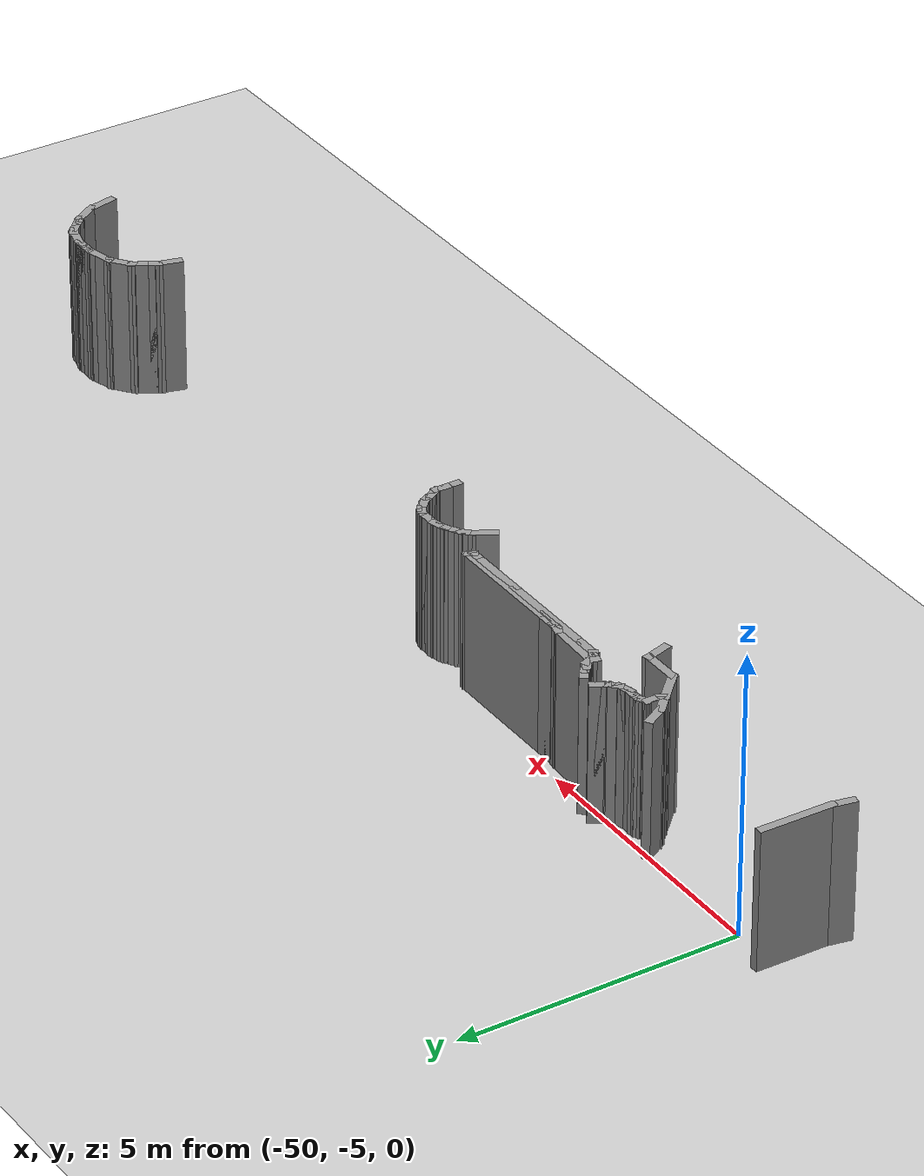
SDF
<sdf version="1.6">
 <world name="default">
  <model name="ground_plane">
   <static>1</static>
   <link name="link">
    <collision name="collision">
     <geometry><plane><normal>0 0 1</normal><size>100 100</size></plane></geometry>
     <surface><friction><ode><mu>100</mu><mu2>50</mu2></ode></friction></surface>
    </collision>
    <visual name="visual">
     <cast_shadows>0</cast_shadows>
     <geometry><plane><normal>0 0 1</normal><size>100 100</size></plane></geometry>
     <material>
      <script><uri>file://media/materials/scripts/gazebo.material</uri><name>Gazebo/Grey</name></script>
     </material>
    </visual>
   </link>
  </model>
  <model name="scene">
   <pose>1.8013 -1.70593 0 0 -0 0</pose>
   <link name="Wall_223">
    <collision name="Wall_223_Collision">
     <geometry><box><size>0.530979 0.15 2.5</size></box></geometry>
     <pose>0 0 1.25 0 -0 0</pose>
    </collision>
    <visual name="Wall_223_Visual">
     <pose>0 0 1.25 0 -0 0</pose>
     <geometry><box><size>0.530979 0.15 2.5</size></box></geometry>
     <material>
      <script><uri>file://media/materials/scripts/gazebo.material</uri><name>Gazebo/Grey</name></script>
      <ambient>1 1 1 1</ambient>
     </material>
    </visual>
    <pose>-47.8017 -4.46052 0 0 -0 1.85773</pose>
   </link>
   <link name="Wall_224">
    <collision name="Wall_224_Collision">
     <geometry><box><size>0.780806 0.15 2.5</size></box></geometry>
     <pose>0 0 1.25 0 -0 0</pose>
    </collision>
    <visual name="Wall_224_Visual">
     <pose>0 0 1.25 0 -0 0</pose>
     <geometry><box><size>0.780806 0.15 2.5</size></box></geometry>
     <material>
      <script><uri>file://media/materials/scripts/gazebo.material</uri><name>Gazebo/Grey</name></script>
      <ambient>1 1 1 1</ambient>
     </material>
    </visual>
    <pose>-48.1787 -4.27782 0 0 -0 3.14159</pose>
   </link>
   <link name="Wall_226">
    <collision name="Wall_226_Collision">
     <geometry><box><size>0.75 0.15 2.5</size></box></geometry>
     <pose>0 0 1.25 0 -0 0</pose>
    </collision>
    <visual name="Wall_226_Visual">
     <pose>0 0 1.25 0 -0 0</pose>
     <geometry><box><size>0.75 0.15 2.5</size></box></geometry>
     <material>
      <script><uri>file://media/materials/scripts/gazebo.material</uri><name>Gazebo/Grey</name></script>
      <ambient>1 1 1 1</ambient>
     </material>
    </visual>
    <pose>-48.7063 -4.06569 0 0 -0 2.35619</pose>
   </link>
   <link name="Wall_227">
    <collision name="Wall_227_Collision">
     <geometry><box><size>0.5 0.15 2.5</size></box></geometry>
     <pose>0 0 1.25 0 -0 0</pose>
    </collision>
    <visual name="Wall_227_Visual">
     <pose>0 0 1.25 0 -0 0</pose>
     <geometry><box><size>0.5 0.15 2.5</size></box></geometry>
     <material>
      <script><uri>file://media/materials/scripts/gazebo.material</uri><name>Gazebo/Grey</name></script>
      <ambient>1 1 1 1</ambient>
     </material>
    </visual>
    <pose>-49.0421 -3.72982 0 0 -0 2.35619</pose>
   </link>
   <link name="Wall_228">
    <collision name="Wall_228_Collision">
     <geometry><box><size>0.5 0.15 2.5</size></box></geometry>
     <pose>0 0 1.25 0 -0 0</pose>
    </collision>
    <visual name="Wall_228_Visual">
     <pose>0 0 1.25 0 -0 0</pose>
     <geometry><box><size>0.5 0.15 2.5</size></box></geometry>
     <material>
      <script><uri>file://media/materials/scripts/gazebo.material</uri><name>Gazebo/Grey</name></script>
      <ambient>1 1 1 1</ambient>
     </material>
    </visual>
    <pose>-49.2534 -3.45452 0 0 -0 2.0944</pose>
   </link>
   <link name="Wall_246">
    <collision name="Wall_246_Collision">
     <geometry><box><size>0.5 0.15 2.5</size></box></geometry>
     <pose>0 0 1.25 0 -0 0</pose>
    </collision>
    <visual name="Wall_246_Visual">
     <pose>0 0 1.25 0 -0 0</pose>
     <geometry><box><size>0.5 0.15 2.5</size></box></geometry>
     <material>
      <script><uri>file://media/materials/scripts/gazebo.material</uri><name>Gazebo/Grey</name></script>
      <ambient>1 1 1 1</ambient>
     </material>
    </visual>
    <pose>-43.4468 -4.09344 0 0 -0 1.0472</pose>
   </link>
   <link name="Wall_247">
    <collision name="Wall_247_Collision">
     <geometry><box><size>0.25 0.15 2.5</size></box></geometry>
     <pose>0 0 1.25 0 -0 0</pose>
    </collision>
    <visual name="Wall_247_Visual">
     <pose>0 0 1.25 0 -0 0</pose>
     <geometry><box><size>0.25 0.15 2.5</size></box></geometry>
     <material>
      <script><uri>file://media/materials/scripts/gazebo.material</uri><name>Gazebo/Grey</name></script>
      <ambient>1 1 1 1</ambient>
     </material>
    </visual>
    <pose>-43.3239 -3.90653 0 0 -0 0.785398</pose>
   </link>
   <link name="Wall_248">
    <collision name="Wall_248_Collision">
     <geometry><box><size>0.25 0.15 2.5</size></box></geometry>
     <pose>0 0 1.25 0 -0 0</pose>
    </collision>
    <visual name="Wall_248_Visual">
     <pose>0 0 1.25 0 -0 0</pose>
     <geometry><box><size>0.25 0.15 2.5</size></box></geometry>
     <material>
      <script><uri>file://media/materials/scripts/gazebo.material</uri><name>Gazebo/Grey</name></script>
      <ambient>1 1 1 1</ambient>
     </material>
    </visual>
    <pose>-43.2532 -3.83582 0 0 -0 0.785398</pose>
   </link>
   <link name="Wall_249">
    <collision name="Wall_249_Collision">
     <geometry><box><size>0.25 0.15 2.5</size></box></geometry>
     <pose>0 0 1.25 0 -0 0</pose>
    </collision>
    <visual name="Wall_249_Visual">
     <pose>0 0 1.25 0 -0 0</pose>
     <geometry><box><size>0.25 0.15 2.5</size></box></geometry>
     <material>
      <script><uri>file://media/materials/scripts/gazebo.material</uri><name>Gazebo/Grey</name></script>
      <ambient>1 1 1 1</ambient>
     </material>
    </visual>
    <pose>-43.1746 -3.77546 0 0 -0 0.523599</pose>
   </link>
   <link name="Wall_250">
    <collision name="Wall_250_Collision">
     <geometry><box><size>0.25 0.15 2.5</size></box></geometry>
     <pose>0 0 1.25 0 -0 0</pose>
    </collision>
    <visual name="Wall_250_Visual">
     <pose>0 0 1.25 0 -0 0</pose>
     <geometry><box><size>0.25 0.15 2.5</size></box></geometry>
     <material>
      <script><uri>file://media/materials/scripts/gazebo.material</uri><name>Gazebo/Grey</name></script>
      <ambient>1 1 1 1</ambient>
     </material>
    </visual>
    <pose>-43.0879 -3.72546 0 0 -0 0.523599</pose>
   </link>
   <link name="Wall_251">
    <collision name="Wall_251_Collision">
     <geometry><box><size>0.25 0.15 2.5</size></box></geometry>
     <pose>0 0 1.25 0 -0 0</pose>
    </collision>
    <visual name="Wall_251_Visual">
     <pose>0 0 1.25 0 -0 0</pose>
     <geometry><box><size>0.25 0.15 2.5</size></box></geometry>
     <material>
      <script><uri>file://media/materials/scripts/gazebo.material</uri><name>Gazebo/Grey</name></script>
      <ambient>1 1 1 1</ambient>
     </material>
    </visual>
    <pose>-43.0013 -3.67546 0 0 -0 0.523599</pose>
   </link>
   <link name="Wall_252">
    <collision name="Wall_252_Collision">
     <geometry><box><size>0.25 0.15 2.5</size></box></geometry>
     <pose>0 0 1.25 0 -0 0</pose>
    </collision>
    <visual name="Wall_252_Visual">
     <pose>0 0 1.25 0 -0 0</pose>
     <geometry><box><size>0.25 0.15 2.5</size></box></geometry>
     <material>
      <script><uri>file://media/materials/scripts/gazebo.material</uri><name>Gazebo/Grey</name></script>
      <ambient>1 1 1 1</ambient>
     </material>
    </visual>
    <pose>-42.9097 -3.63752 0 0 -0 0.261799</pose>
   </link>
   <link name="Wall_253">
    <collision name="Wall_253_Collision">
     <geometry><box><size>0.25 0.15 2.5</size></box></geometry>
     <pose>0 0 1.25 0 -0 0</pose>
    </collision>
    <visual name="Wall_253_Visual">
     <pose>0 0 1.25 0 -0 0</pose>
     <geometry><box><size>0.25 0.15 2.5</size></box></geometry>
     <material>
      <script><uri>file://media/materials/scripts/gazebo.material</uri><name>Gazebo/Grey</name></script>
      <ambient>1 1 1 1</ambient>
     </material>
    </visual>
    <pose>-42.8132 -3.61164 0 0 -0 0.261799</pose>
   </link>
   <link name="Wall_254">
    <collision name="Wall_254_Collision">
     <geometry><box><size>0.25 0.15 2.5</size></box></geometry>
     <pose>0 0 1.25 0 -0 0</pose>
    </collision>
    <visual name="Wall_254_Visual">
     <pose>0 0 1.25 0 -0 0</pose>
     <geometry><box><size>0.25 0.15 2.5</size></box></geometry>
     <material>
      <script><uri>file://media/materials/scripts/gazebo.material</uri><name>Gazebo/Grey</name></script>
      <ambient>1 1 1 1</ambient>
     </material>
    </visual>
    <pose>-42.7149 -3.5987 0 0 -0 0</pose>
   </link>
   <link name="Wall_255">
    <collision name="Wall_255_Collision">
     <geometry><box><size>0.25 0.15 2.5</size></box></geometry>
     <pose>0 0 1.25 0 -0 0</pose>
    </collision>
    <visual name="Wall_255_Visual">
     <pose>0 0 1.25 0 -0 0</pose>
     <geometry><box><size>0.25 0.15 2.5</size></box></geometry>
     <material>
      <script><uri>file://media/materials/scripts/gazebo.material</uri><name>Gazebo/Grey</name></script>
      <ambient>1 1 1 1</ambient>
     </material>
    </visual>
    <pose>-42.6149 -3.5987 0 0 -0 0</pose>
   </link>
   <link name="Wall_256">
    <collision name="Wall_256_Collision">
     <geometry><box><size>0.25 0.15 2.5</size></box></geometry>
     <pose>0 0 1.25 0 -0 0</pose>
    </collision>
    <visual name="Wall_256_Visual">
     <pose>0 0 1.25 0 -0 0</pose>
     <geometry><box><size>0.25 0.15 2.5</size></box></geometry>
     <material>
      <script><uri>file://media/materials/scripts/gazebo.material</uri><name>Gazebo/Grey</name></script>
      <ambient>1 1 1 1</ambient>
     </material>
    </visual>
    <pose>-42.5149 -3.5987 0 0 -0 0</pose>
   </link>
   <link name="Wall_257">
    <collision name="Wall_257_Collision">
     <geometry><box><size>0.25 0.15 2.5</size></box></geometry>
     <pose>0 0 1.25 0 -0 0</pose>
    </collision>
    <visual name="Wall_257_Visual">
     <pose>0 0 1.25 0 -0 0</pose>
     <geometry><box><size>0.25 0.15 2.5</size></box></geometry>
     <material>
      <script><uri>file://media/materials/scripts/gazebo.material</uri><name>Gazebo/Grey</name></script>
      <ambient>1 1 1 1</ambient>
     </material>
    </visual>
    <pose>-42.4166 -3.61164 0 0 0 -0.261799</pose>
   </link>
   <link name="Wall_258">
    <collision name="Wall_258_Collision">
     <geometry><box><size>0.25 0.15 2.5</size></box></geometry>
     <pose>0 0 1.25 0 -0 0</pose>
    </collision>
    <visual name="Wall_258_Visual">
     <pose>0 0 1.25 0 -0 0</pose>
     <geometry><box><size>0.25 0.15 2.5</size></box></geometry>
     <material>
      <script><uri>file://media/materials/scripts/gazebo.material</uri><name>Gazebo/Grey</name></script>
      <ambient>1 1 1 1</ambient>
     </material>
    </visual>
    <pose>-42.325 -3.64958 0 0 0 -0.523599</pose>
   </link>
   <link name="Wall_259">
    <collision name="Wall_259_Collision">
     <geometry><box><size>0.25 0.15 2.5</size></box></geometry>
     <pose>0 0 1.25 0 -0 0</pose>
    </collision>
    <visual name="Wall_259_Visual">
     <pose>0 0 1.25 0 -0 0</pose>
     <geometry><box><size>0.25 0.15 2.5</size></box></geometry>
     <material>
      <script><uri>file://media/materials/scripts/gazebo.material</uri><name>Gazebo/Grey</name></script>
      <ambient>1 1 1 1</ambient>
     </material>
    </visual>
    <pose>-42.2463 -3.70994 0 0 0 -0.785398</pose>
   </link>
   <link name="Wall_260">
    <collision name="Wall_260_Collision">
     <geometry><box><size>0.25 0.15 2.5</size></box></geometry>
     <pose>0 0 1.25 0 -0 0</pose>
    </collision>
    <visual name="Wall_260_Visual">
     <pose>0 0 1.25 0 -0 0</pose>
     <geometry><box><size>0.25 0.15 2.5</size></box></geometry>
     <material>
      <script><uri>file://media/materials/scripts/gazebo.material</uri><name>Gazebo/Grey</name></script>
      <ambient>1 1 1 1</ambient>
     </material>
    </visual>
    <pose>-42.1756 -3.78065 0 0 0 -0.785398</pose>
   </link>
   <link name="Wall_261">
    <collision name="Wall_261_Collision">
     <geometry><box><size>0.25 0.15 2.5</size></box></geometry>
     <pose>0 0 1.25 0 -0 0</pose>
    </collision>
    <visual name="Wall_261_Visual">
     <pose>0 0 1.25 0 -0 0</pose>
     <geometry><box><size>0.25 0.15 2.5</size></box></geometry>
     <material>
      <script><uri>file://media/materials/scripts/gazebo.material</uri><name>Gazebo/Grey</name></script>
      <ambient>1 1 1 1</ambient>
     </material>
    </visual>
    <pose>-42.1152 -3.8593 0 0 0 -1.0472</pose>
   </link>
   <link name="Wall_262">
    <collision name="Wall_262_Collision">
     <geometry><box><size>0.25 0.15 2.5</size></box></geometry>
     <pose>0 0 1.25 0 -0 0</pose>
    </collision>
    <visual name="Wall_262_Visual">
     <pose>0 0 1.25 0 -0 0</pose>
     <geometry><box><size>0.25 0.15 2.5</size></box></geometry>
     <material>
      <script><uri>file://media/materials/scripts/gazebo.material</uri><name>Gazebo/Grey</name></script>
      <ambient>1 1 1 1</ambient>
     </material>
    </visual>
    <pose>-42.0652 -3.94591 0 0 0 -1.0472</pose>
   </link>
   <link name="Wall_263">
    <collision name="Wall_263_Collision">
     <geometry><box><size>0.25 0.15 2.5</size></box></geometry>
     <pose>0 0 1.25 0 -0 0</pose>
    </collision>
    <visual name="Wall_263_Visual">
     <pose>0 0 1.25 0 -0 0</pose>
     <geometry><box><size>0.25 0.15 2.5</size></box></geometry>
     <material>
      <script><uri>file://media/materials/scripts/gazebo.material</uri><name>Gazebo/Grey</name></script>
      <ambient>1 1 1 1</ambient>
     </material>
    </visual>
    <pose>-42.0152 -4.03251 0 0 0 -1.0472</pose>
   </link>
   <link name="Wall_264">
    <collision name="Wall_264_Collision">
     <geometry><box><size>0.25 0.15 2.5</size></box></geometry>
     <pose>0 0 1.25 0 -0 0</pose>
    </collision>
    <visual name="Wall_264_Visual">
     <pose>0 0 1.25 0 -0 0</pose>
     <geometry><box><size>0.25 0.15 2.5</size></box></geometry>
     <material>
      <script><uri>file://media/materials/scripts/gazebo.material</uri><name>Gazebo/Grey</name></script>
      <ambient>1 1 1 1</ambient>
     </material>
    </visual>
    <pose>-41.9652 -4.11911 0 0 0 -1.0472</pose>
   </link>
   <link name="Wall_265">
    <collision name="Wall_265_Collision">
     <geometry><box><size>0.25 0.15 2.5</size></box></geometry>
     <pose>0 0 1.25 0 -0 0</pose>
    </collision>
    <visual name="Wall_265_Visual">
     <pose>0 0 1.25 0 -0 0</pose>
     <geometry><box><size>0.25 0.15 2.5</size></box></geometry>
     <material>
      <script><uri>file://media/materials/scripts/gazebo.material</uri><name>Gazebo/Grey</name></script>
      <ambient>1 1 1 1</ambient>
     </material>
    </visual>
    <pose>-41.9402 -4.21241 0 0 0 -1.5708</pose>
   </link>
   <link name="Wall_266">
    <collision name="Wall_266_Collision">
     <geometry><box><size>0.25 0.15 2.5</size></box></geometry>
     <pose>0 0 1.25 0 -0 0</pose>
    </collision>
    <visual name="Wall_266_Visual">
     <pose>0 0 1.25 0 -0 0</pose>
     <geometry><box><size>0.25 0.15 2.5</size></box></geometry>
     <material>
      <script><uri>file://media/materials/scripts/gazebo.material</uri><name>Gazebo/Grey</name></script>
      <ambient>1 1 1 1</ambient>
     </material>
    </visual>
    <pose>-41.9402 -4.31241 0 0 0 -1.5708</pose>
   </link>
   <link name="Wall_267">
    <collision name="Wall_267_Collision">
     <geometry><box><size>0.25 0.15 2.5</size></box></geometry>
     <pose>0 0 1.25 0 -0 0</pose>
    </collision>
    <visual name="Wall_267_Visual">
     <pose>0 0 1.25 0 -0 0</pose>
     <geometry><box><size>0.25 0.15 2.5</size></box></geometry>
     <material>
      <script><uri>file://media/materials/scripts/gazebo.material</uri><name>Gazebo/Grey</name></script>
      <ambient>1 1 1 1</ambient>
     </material>
    </visual>
    <pose>-41.9402 -4.41241 0 0 0 -1.5708</pose>
   </link>
   <link name="Wall_268">
    <collision name="Wall_268_Collision">
     <geometry><box><size>0.25 0.15 2.5</size></box></geometry>
     <pose>0 0 1.25 0 -0 0</pose>
    </collision>
    <visual name="Wall_268_Visual">
     <pose>0 0 1.25 0 -0 0</pose>
     <geometry><box><size>0.25 0.15 2.5</size></box></geometry>
     <material>
      <script><uri>file://media/materials/scripts/gazebo.material</uri><name>Gazebo/Grey</name></script>
      <ambient>1 1 1 1</ambient>
     </material>
    </visual>
    <pose>-41.9402 -4.51241 0 0 0 -1.5708</pose>
   </link>
   <link name="Wall_327">
    <collision name="Wall_327_Collision">
     <geometry><box><size>0.25 0.15 2.5</size></box></geometry>
     <pose>0 0 1.25 0 -0 0</pose>
    </collision>
    <visual name="Wall_327_Visual">
     <pose>0 0 1.25 0 -0 0</pose>
     <geometry><box><size>0.25 0.15 2.5</size></box></geometry>
     <material>
      <script><uri>file://media/materials/scripts/gazebo.material</uri><name>Gazebo/Grey</name></script>
      <ambient>1 1 1 1</ambient>
     </material>
    </visual>
    <pose>-48.8934 -3.81026 0 0 -0 1.0472</pose>
   </link>
   <link name="Wall_328">
    <collision name="Wall_328_Collision">
     <geometry><box><size>0.25 0.15 2.5</size></box></geometry>
     <pose>0 0 1.25 0 -0 0</pose>
    </collision>
    <visual name="Wall_328_Visual">
     <pose>0 0 1.25 0 -0 0</pose>
     <geometry><box><size>0.25 0.15 2.5</size></box></geometry>
     <material>
      <script><uri>file://media/materials/scripts/gazebo.material</uri><name>Gazebo/Grey</name></script>
      <ambient>1 1 1 1</ambient>
     </material>
    </visual>
    <pose>-48.8684 -3.71696 0 0 -0 1.5708</pose>
   </link>
   <link name="Wall_329">
    <collision name="Wall_329_Collision">
     <geometry><box><size>0.25 0.15 2.5</size></box></geometry>
     <pose>0 0 1.25 0 -0 0</pose>
    </collision>
    <visual name="Wall_329_Visual">
     <pose>0 0 1.25 0 -0 0</pose>
     <geometry><box><size>0.25 0.15 2.5</size></box></geometry>
     <material>
      <script><uri>file://media/materials/scripts/gazebo.material</uri><name>Gazebo/Grey</name></script>
      <ambient>1 1 1 1</ambient>
     </material>
    </visual>
    <pose>-48.8684 -3.61696 0 0 -0 1.5708</pose>
   </link>
   <link name="Wall_330">
    <collision name="Wall_330_Collision">
     <geometry><box><size>0.25 0.15 2.5</size></box></geometry>
     <pose>0 0 1.25 0 -0 0</pose>
    </collision>
    <visual name="Wall_330_Visual">
     <pose>0 0 1.25 0 -0 0</pose>
     <geometry><box><size>0.25 0.15 2.5</size></box></geometry>
     <material>
      <script><uri>file://media/materials/scripts/gazebo.material</uri><name>Gazebo/Grey</name></script>
      <ambient>1 1 1 1</ambient>
     </material>
    </visual>
    <pose>-48.8251 -3.54196 0 0 -0 0.523599</pose>
   </link>
   <link name="Wall_331">
    <collision name="Wall_331_Collision">
     <geometry><box><size>0.25 0.15 2.5</size></box></geometry>
     <pose>0 0 1.25 0 -0 0</pose>
    </collision>
    <visual name="Wall_331_Visual">
     <pose>0 0 1.25 0 -0 0</pose>
     <geometry><box><size>0.25 0.15 2.5</size></box></geometry>
     <material>
      <script><uri>file://media/materials/scripts/gazebo.material</uri><name>Gazebo/Grey</name></script>
      <ambient>1 1 1 1</ambient>
     </material>
    </visual>
    <pose>-48.7335 -3.50402 0 0 -0 0.261799</pose>
   </link>
   <link name="Wall_332">
    <collision name="Wall_332_Collision">
     <geometry><box><size>0.25 0.15 2.5</size></box></geometry>
     <pose>0 0 1.25 0 -0 0</pose>
    </collision>
    <visual name="Wall_332_Visual">
     <pose>0 0 1.25 0 -0 0</pose>
     <geometry><box><size>0.25 0.15 2.5</size></box></geometry>
     <material>
      <script><uri>file://media/materials/scripts/gazebo.material</uri><name>Gazebo/Grey</name></script>
      <ambient>1 1 1 1</ambient>
     </material>
    </visual>
    <pose>-48.6352 -3.49107 0 0 -0 0</pose>
   </link>
   <link name="Wall_333">
    <collision name="Wall_333_Collision">
     <geometry><box><size>0.25 0.15 2.5</size></box></geometry>
     <pose>0 0 1.25 0 -0 0</pose>
    </collision>
    <visual name="Wall_333_Visual">
     <pose>0 0 1.25 0 -0 0</pose>
     <geometry><box><size>0.25 0.15 2.5</size></box></geometry>
     <material>
      <script><uri>file://media/materials/scripts/gazebo.material</uri><name>Gazebo/Grey</name></script>
      <ambient>1 1 1 1</ambient>
     </material>
    </visual>
    <pose>-48.5352 -3.49107 0 0 -0 0</pose>
   </link>
   <link name="Wall_334">
    <collision name="Wall_334_Collision">
     <geometry><box><size>0.25 0.15 2.5</size></box></geometry>
     <pose>0 0 1.25 0 -0 0</pose>
    </collision>
    <visual name="Wall_334_Visual">
     <pose>0 0 1.25 0 -0 0</pose>
     <geometry><box><size>0.25 0.15 2.5</size></box></geometry>
     <material>
      <script><uri>file://media/materials/scripts/gazebo.material</uri><name>Gazebo/Grey</name></script>
      <ambient>1 1 1 1</ambient>
     </material>
    </visual>
    <pose>-48.4369 -3.47813 0 0 -0 0.261799</pose>
   </link>
   <link name="Wall_335">
    <collision name="Wall_335_Collision">
     <geometry><box><size>0.25 0.15 2.5</size></box></geometry>
     <pose>0 0 1.25 0 -0 0</pose>
    </collision>
    <visual name="Wall_335_Visual">
     <pose>0 0 1.25 0 -0 0</pose>
     <geometry><box><size>0.25 0.15 2.5</size></box></geometry>
     <material>
      <script><uri>file://media/materials/scripts/gazebo.material</uri><name>Gazebo/Grey</name></script>
      <ambient>1 1 1 1</ambient>
     </material>
    </visual>
    <pose>-48.3403 -3.45225 0 0 -0 0.261799</pose>
   </link>
   <link name="Wall_337">
    <collision name="Wall_337_Collision">
     <geometry><box><size>0.25 0.15 2.5</size></box></geometry>
     <pose>0 0 1.25 0 -0 0</pose>
    </collision>
    <visual name="Wall_337_Visual">
     <pose>0 0 1.25 0 -0 0</pose>
     <geometry><box><size>0.25 0.15 2.5</size></box></geometry>
     <material>
      <script><uri>file://media/materials/scripts/gazebo.material</uri><name>Gazebo/Grey</name></script>
      <ambient>1 1 1 1</ambient>
     </material>
    </visual>
    <pose>-48.3403 -3.45225 0 0 -0 0.261799</pose>
   </link>
   <link name="Wall_338">
    <collision name="Wall_338_Collision">
     <geometry><box><size>0.25 0.15 2.5</size></box></geometry>
     <pose>0 0 1.25 0 -0 0</pose>
    </collision>
    <visual name="Wall_338_Visual">
     <pose>0 0 1.25 0 -0 0</pose>
     <geometry><box><size>0.25 0.15 2.5</size></box></geometry>
     <material>
      <script><uri>file://media/materials/scripts/gazebo.material</uri><name>Gazebo/Grey</name></script>
      <ambient>1 1 1 1</ambient>
     </material>
    </visual>
    <pose>-48.2567 -3.40396 0 0 -0 0.785398</pose>
   </link>
   <link name="Wall_339">
    <collision name="Wall_339_Collision">
     <geometry><box><size>0.25 0.15 2.5</size></box></geometry>
     <pose>0 0 1.25 0 -0 0</pose>
    </collision>
    <visual name="Wall_339_Visual">
     <pose>0 0 1.25 0 -0 0</pose>
     <geometry><box><size>0.25 0.15 2.5</size></box></geometry>
     <material>
      <script><uri>file://media/materials/scripts/gazebo.material</uri><name>Gazebo/Grey</name></script>
      <ambient>1 1 1 1</ambient>
     </material>
    </visual>
    <pose>-48.1859 -3.33324 0 0 -0 0.785398</pose>
   </link>
   <link name="Wall_340">
    <collision name="Wall_340_Collision">
     <geometry><box><size>0.25 0.15 2.5</size></box></geometry>
     <pose>0 0 1.25 0 -0 0</pose>
    </collision>
    <visual name="Wall_340_Visual">
     <pose>0 0 1.25 0 -0 0</pose>
     <geometry><box><size>0.25 0.15 2.5</size></box></geometry>
     <material>
      <script><uri>file://media/materials/scripts/gazebo.material</uri><name>Gazebo/Grey</name></script>
      <ambient>1 1 1 1</ambient>
     </material>
    </visual>
    <pose>-48.1256 -3.25459 0 0 -0 1.0472</pose>
   </link>
   <link name="Wall_341">
    <collision name="Wall_341_Collision">
     <geometry><box><size>0.25 0.15 2.5</size></box></geometry>
     <pose>0 0 1.25 0 -0 0</pose>
    </collision>
    <visual name="Wall_341_Visual">
     <pose>0 0 1.25 0 -0 0</pose>
     <geometry><box><size>0.25 0.15 2.5</size></box></geometry>
     <material>
      <script><uri>file://media/materials/scripts/gazebo.material</uri><name>Gazebo/Grey</name></script>
      <ambient>1 1 1 1</ambient>
     </material>
    </visual>
    <pose>-48.0756 -3.16799 0 0 -0 1.0472</pose>
   </link>
   <link name="Wall_345">
    <collision name="Wall_345_Collision">
     <geometry><box><size>0.291187 0.15 2.5</size></box></geometry>
     <pose>0 0 1.25 0 -0 0</pose>
    </collision>
    <visual name="Wall_345_Visual">
     <pose>0 0 1.25 0 -0 0</pose>
     <geometry><box><size>0.291187 0.15 2.5</size></box></geometry>
     <material>
      <script><uri>file://media/materials/scripts/gazebo.material</uri><name>Gazebo/Grey</name></script>
      <ambient>1 1 1 1</ambient>
     </material>
    </visual>
    <pose>-47.712 -3.18531 0 0 0 -0.634634</pose>
   </link>
   <link name="Wall_346">
    <collision name="Wall_346_Collision">
     <geometry><box><size>0.25479 0.15 2.5</size></box></geometry>
     <pose>0 0 1.25 0 -0 0</pose>
    </collision>
    <visual name="Wall_346_Visual">
     <pose>0 0 1.25 0 -0 0</pose>
     <geometry><box><size>0.25479 0.15 2.5</size></box></geometry>
     <material>
      <script><uri>file://media/materials/scripts/gazebo.material</uri><name>Gazebo/Grey</name></script>
      <ambient>1 1 1 1</ambient>
     </material>
    </visual>
    <pose>-47.6185 -3.26757 0 0 0 -0.797944</pose>
   </link>
   <link name="Wall_347">
    <collision name="Wall_347_Collision">
     <geometry><box><size>0.272093 0.15 2.5</size></box></geometry>
     <pose>0 0 1.25 0 -0 0</pose>
    </collision>
    <visual name="Wall_347_Visual">
     <pose>0 0 1.25 0 -0 0</pose>
     <geometry><box><size>0.272093 0.15 2.5</size></box></geometry>
     <material>
      <script><uri>file://media/materials/scripts/gazebo.material</uri><name>Gazebo/Grey</name></script>
      <ambient>1 1 1 1</ambient>
     </material>
    </visual>
    <pose>-47.5338 -3.34549 0 0 0 -0.661705</pose>
   </link>
   <link name="Wall_348">
    <collision name="Wall_348_Collision">
     <geometry><box><size>0.247829 0.15 2.5</size></box></geometry>
     <pose>0 0 1.25 0 -0 0</pose>
    </collision>
    <visual name="Wall_348_Visual">
     <pose>0 0 1.25 0 -0 0</pose>
     <geometry><box><size>0.247829 0.15 2.5</size></box></geometry>
     <material>
      <script><uri>file://media/materials/scripts/gazebo.material</uri><name>Gazebo/Grey</name></script>
      <ambient>1 1 1 1</ambient>
     </material>
    </visual>
    <pose>-47.4676 -3.42559 0 0 0 -1.19431</pose>
   </link>
   <link name="Wall_349">
    <collision name="Wall_349_Collision">
     <geometry><box><size>0.232353 0.15 2.5</size></box></geometry>
     <pose>0 0 1.25 0 -0 0</pose>
    </collision>
    <visual name="Wall_349_Visual">
     <pose>0 0 1.25 0 -0 0</pose>
     <geometry><box><size>0.232353 0.15 2.5</size></box></geometry>
     <material>
      <script><uri>file://media/materials/scripts/gazebo.material</uri><name>Gazebo/Grey</name></script>
      <ambient>1 1 1 1</ambient>
     </material>
    </visual>
    <pose>-47.4643 -3.51056 0 0 0 -1.85914</pose>
   </link>
   <link name="Wall_350">
    <collision name="Wall_350_Collision">
     <geometry><box><size>0.25 0.15 2.5</size></box></geometry>
     <pose>0 0 1.25 0 -0 0</pose>
    </collision>
    <visual name="Wall_350_Visual">
     <pose>0 0 1.25 0 -0 0</pose>
     <geometry><box><size>0.25 0.15 2.5</size></box></geometry>
     <material>
      <script><uri>file://media/materials/scripts/gazebo.material</uri><name>Gazebo/Grey</name></script>
      <ambient>1 1 1 1</ambient>
     </material>
    </visual>
    <pose>-47.4277 -3.56297 0 0 0 -0.261799</pose>
   </link>
   <link name="Wall_351">
    <collision name="Wall_351_Collision">
     <geometry><box><size>0.25 0.15 2.5</size></box></geometry>
     <pose>0 0 1.25 0 -0 0</pose>
    </collision>
    <visual name="Wall_351_Visual">
     <pose>0 0 1.25 0 -0 0</pose>
     <geometry><box><size>0.25 0.15 2.5</size></box></geometry>
     <material>
      <script><uri>file://media/materials/scripts/gazebo.material</uri><name>Gazebo/Grey</name></script>
      <ambient>1 1 1 1</ambient>
     </material>
    </visual>
    <pose>-47.3361 -3.60091 0 0 0 -0.523599</pose>
   </link>
   <link name="Wall_352">
    <collision name="Wall_352_Collision">
     <geometry><box><size>0.5 0.15 2.5</size></box></geometry>
     <pose>0 0 1.25 0 -0 0</pose>
    </collision>
    <visual name="Wall_352_Visual">
     <pose>0 0 1.25 0 -0 0</pose>
     <geometry><box><size>0.5 0.15 2.5</size></box></geometry>
     <material>
      <script><uri>file://media/materials/scripts/gazebo.material</uri><name>Gazebo/Grey</name></script>
      <ambient>1 1 1 1</ambient>
     </material>
    </visual>
    <pose>-47.1178 -3.62591 0 0 -0 0</pose>
   </link>
   <link name="Wall_353">
    <collision name="Wall_353_Collision">
     <geometry><box><size>2 0.15 2.5</size></box></geometry>
     <pose>0 0 1.25 0 -0 0</pose>
    </collision>
    <visual name="Wall_353_Visual">
     <pose>0 0 1.25 0 -0 0</pose>
     <geometry><box><size>2 0.15 2.5</size></box></geometry>
     <material>
      <script><uri>file://media/materials/scripts/gazebo.material</uri><name>Gazebo/Grey</name></script>
      <ambient>1 1 1 1</ambient>
     </material>
    </visual>
    <pose>-46.0178 -3.62591 0 0 -0 0</pose>
   </link>
   <link name="Wall_355">
    <collision name="Wall_355_Collision">
     <geometry><box><size>1.25 0.15 2.5</size></box></geometry>
     <pose>0 0 1.25 0 -0 0</pose>
    </collision>
    <visual name="Wall_355_Visual">
     <pose>0 0 1.25 0 -0 0</pose>
     <geometry><box><size>1.25 0.15 2.5</size></box></geometry>
     <material>
      <script><uri>file://media/materials/scripts/gazebo.material</uri><name>Gazebo/Grey</name></script>
      <ambient>1 1 1 1</ambient>
     </material>
    </visual>
    <pose>-44.5428 -3.62591 0 0 -0 0</pose>
   </link>
   <link name="Wall_356">
    <collision name="Wall_356_Collision">
     <geometry><box><size>0.25 0.15 2.5</size></box></geometry>
     <pose>0 0 1.25 0 -0 0</pose>
    </collision>
    <visual name="Wall_356_Visual">
     <pose>0 0 1.25 0 -0 0</pose>
     <geometry><box><size>0.25 0.15 2.5</size></box></geometry>
     <material>
      <script><uri>file://media/materials/scripts/gazebo.material</uri><name>Gazebo/Grey</name></script>
      <ambient>1 1 1 1</ambient>
     </material>
    </visual>
    <pose>-43.9428 -3.62591 0 0 -0 0</pose>
   </link>
   <link name="Wall_357">
    <collision name="Wall_357_Collision">
     <geometry><box><size>0.25 0.15 2.5</size></box></geometry>
     <pose>0 0 1.25 0 -0 0</pose>
    </collision>
    <visual name="Wall_357_Visual">
     <pose>0 0 1.25 0 -0 0</pose>
     <geometry><box><size>0.25 0.15 2.5</size></box></geometry>
     <material>
      <script><uri>file://media/materials/scripts/gazebo.material</uri><name>Gazebo/Grey</name></script>
      <ambient>1 1 1 1</ambient>
     </material>
    </visual>
    <pose>-43.8678 -3.58261 0 0 -0 1.0472</pose>
   </link>
   <link name="Wall_358">
    <collision name="Wall_358_Collision">
     <geometry><box><size>2.25 0.15 2.5</size></box></geometry>
     <pose>0 0 1.25 0 -0 0</pose>
    </collision>
    <visual name="Wall_358_Visual">
     <pose>0 0 1.25 0 -0 0</pose>
     <geometry><box><size>2.25 0.15 2.5</size></box></geometry>
     <material>
      <script><uri>file://media/materials/scripts/gazebo.material</uri><name>Gazebo/Grey</name></script>
      <ambient>1 1 1 1</ambient>
     </material>
    </visual>
    <pose>-44.8928 -3.53931 0 0 -0 3.14159</pose>
   </link>
   <link name="Wall_360">
    <collision name="Wall_360_Collision">
     <geometry><box><size>0.5 0.15 2.5</size></box></geometry>
     <pose>0 0 1.25 0 -0 0</pose>
    </collision>
    <visual name="Wall_360_Visual">
     <pose>0 0 1.25 0 -0 0</pose>
     <geometry><box><size>0.5 0.15 2.5</size></box></geometry>
     <material>
      <script><uri>file://media/materials/scripts/gazebo.material</uri><name>Gazebo/Grey</name></script>
      <ambient>1 1 1 1</ambient>
     </material>
    </visual>
    <pose>-46.1178 -3.53931 0 0 -0 3.14159</pose>
   </link>
   <link name="Wall_361">
    <collision name="Wall_361_Collision">
     <geometry><box><size>0.25 0.15 2.5</size></box></geometry>
     <pose>0 0 1.25 0 -0 0</pose>
    </collision>
    <visual name="Wall_361_Visual">
     <pose>0 0 1.25 0 -0 0</pose>
     <geometry><box><size>0.25 0.15 2.5</size></box></geometry>
     <material>
      <script><uri>file://media/materials/scripts/gazebo.material</uri><name>Gazebo/Grey</name></script>
      <ambient>1 1 1 1</ambient>
     </material>
    </visual>
    <pose>-46.3428 -3.53931 0 0 -0 3.14159</pose>
   </link>
   <link name="Wall_362">
    <collision name="Wall_362_Collision">
     <geometry><box><size>0.25 0.15 2.5</size></box></geometry>
     <pose>0 0 1.25 0 -0 0</pose>
    </collision>
    <visual name="Wall_362_Visual">
     <pose>0 0 1.25 0 -0 0</pose>
     <geometry><box><size>0.25 0.15 2.5</size></box></geometry>
     <material>
      <script><uri>file://media/materials/scripts/gazebo.material</uri><name>Gazebo/Grey</name></script>
      <ambient>1 1 1 1</ambient>
     </material>
    </visual>
    <pose>-46.4411 -3.52637 0 0 -0 2.87979</pose>
   </link>
   <link name="Wall_363">
    <collision name="Wall_363_Collision">
     <geometry><box><size>1.11411 0.15 2.5</size></box></geometry>
     <pose>0 0 1.25 0 -0 0</pose>
    </collision>
    <visual name="Wall_363_Visual">
     <pose>0 0 1.25 0 -0 0</pose>
     <geometry><box><size>1.11411 0.15 2.5</size></box></geometry>
     <material>
      <script><uri>file://media/materials/scripts/gazebo.material</uri><name>Gazebo/Grey</name></script>
      <ambient>1 1 1 1</ambient>
     </material>
    </visual>
    <pose>-46.971 -3.49225 0 0 -0 3.09765</pose>
   </link>
   <link name="Wall_406">
    <collision name="Wall_406_Collision">
     <geometry><box><size>1.39349 0.15 2.5</size></box></geometry>
     <pose>0 0 1.25 0 -0 0</pose>
    </collision>
    <visual name="Wall_406_Visual">
     <pose>0 0 1.25 0 -0 0</pose>
     <geometry><box><size>1.39349 0.15 2.5</size></box></geometry>
     <material>
      <script><uri>file://media/materials/scripts/gazebo.material</uri><name>Gazebo/Grey</name></script>
      <ambient>1 1 1 1</ambient>
     </material>
    </visual>
    <pose>-52.6363 -3.68458 0 0 0 -1.58136</pose>
   </link>
   <link name="Wall_407">
    <collision name="Wall_407_Collision">
     <geometry><box><size>0.476115 0.15 2.5</size></box></geometry>
     <pose>0 0 1.25 0 -0 0</pose>
    </collision>
    <visual name="Wall_407_Visual">
     <pose>0 0 1.25 0 -0 0</pose>
     <geometry><box><size>0.476115 0.15 2.5</size></box></geometry>
     <material>
      <script><uri>file://media/materials/scripts/gazebo.material</uri><name>Gazebo/Grey</name></script>
      <ambient>1 1 1 1</ambient>
     </material>
    </visual>
    <pose>-52.6794 -4.46647 0 0 0 -1.7688</pose>
   </link>
   <link name="Wall_427">
    <collision name="Wall_427_Collision">
     <geometry><box><size>0.5 0.15 2.5</size></box></geometry>
     <pose>0 0 1.25 0 -0 0</pose>
    </collision>
    <visual name="Wall_427_Visual">
     <pose>0 0 1.25 0 -0 0</pose>
     <geometry><box><size>0.5 0.15 2.5</size></box></geometry>
     <material>
      <script><uri>file://media/materials/scripts/gazebo.material</uri><name>Gazebo/Grey</name></script>
      <ambient>1 1 1 1</ambient>
     </material>
    </visual>
    <pose>-32.4304 -3.45585 0 0 0 -2.87979</pose>
   </link>
   <link name="Wall_428">
    <collision name="Wall_428_Collision">
     <geometry><box><size>0.572321 0.15 2.5</size></box></geometry>
     <pose>0 0 1.25 0 -0 0</pose>
    </collision>
    <visual name="Wall_428_Visual">
     <pose>0 0 1.25 0 -0 0</pose>
     <geometry><box><size>0.572321 0.15 2.5</size></box></geometry>
     <material>
      <script><uri>file://media/materials/scripts/gazebo.material</uri><name>Gazebo/Grey</name></script>
      <ambient>1 1 1 1</ambient>
     </material>
    </visual>
    <pose>-32.7665 -3.6303 0 0 0 -2.48344</pose>
   </link>
   <link name="Wall_429">
    <collision name="Wall_429_Collision">
     <geometry><box><size>0.5 0.15 2.5</size></box></geometry>
     <pose>0 0 1.25 0 -0 0</pose>
    </collision>
    <visual name="Wall_429_Visual">
     <pose>0 0 1.25 0 -0 0</pose>
     <geometry><box><size>0.5 0.15 2.5</size></box></geometry>
     <material>
      <script><uri>file://media/materials/scripts/gazebo.material</uri><name>Gazebo/Grey</name></script>
      <ambient>1 1 1 1</ambient>
     </material>
    </visual>
    <pose>-33.0175 -3.9074 0 0 0 -2.0944</pose>
   </link>
   <link name="Wall_431">
    <collision name="Wall_431_Collision">
     <geometry><box><size>0.25 0.15 2.5</size></box></geometry>
     <pose>0 0 1.25 0 -0 0</pose>
    </collision>
    <visual name="Wall_431_Visual">
     <pose>0 0 1.25 0 -0 0</pose>
     <geometry><box><size>0.25 0.15 2.5</size></box></geometry>
     <material>
      <script><uri>file://media/materials/scripts/gazebo.material</uri><name>Gazebo/Grey</name></script>
      <ambient>1 1 1 1</ambient>
     </material>
    </visual>
    <pose>-33.13 -4.10225 0 0 0 -2.0944</pose>
   </link>
   <link name="Wall_432">
    <collision name="Wall_432_Collision">
     <geometry><box><size>0.5 0.15 2.5</size></box></geometry>
     <pose>0 0 1.25 0 -0 0</pose>
    </collision>
    <visual name="Wall_432_Visual">
     <pose>0 0 1.25 0 -0 0</pose>
     <geometry><box><size>0.5 0.15 2.5</size></box></geometry>
     <material>
      <script><uri>file://media/materials/scripts/gazebo.material</uri><name>Gazebo/Grey</name></script>
      <ambient>1 1 1 1</ambient>
     </material>
    </visual>
    <pose>-33.2003 -4.31459 0 0 0 -1.8326</pose>
   </link>
   <link name="Wall_456">
    <collision name="Wall_456_Collision">
     <geometry><box><size>0.25 0.15 2.5</size></box></geometry>
     <pose>0 0 1.25 0 -0 0</pose>
    </collision>
    <visual name="Wall_456_Visual">
     <pose>0 0 1.25 0 -0 0</pose>
     <geometry><box><size>0.25 0.15 2.5</size></box></geometry>
     <material>
      <script><uri>file://media/materials/scripts/gazebo.material</uri><name>Gazebo/Grey</name></script>
      <ambient>1 1 1 1</ambient>
     </material>
    </visual>
    <pose>-32.2131 -3.39761 0 0 -0 0.261799</pose>
   </link>
   <link name="Wall_457">
    <collision name="Wall_457_Collision">
     <geometry><box><size>0.25 0.15 2.5</size></box></geometry>
     <pose>0 0 1.25 0 -0 0</pose>
    </collision>
    <visual name="Wall_457_Visual">
     <pose>0 0 1.25 0 -0 0</pose>
     <geometry><box><size>0.25 0.15 2.5</size></box></geometry>
     <material>
      <script><uri>file://media/materials/scripts/gazebo.material</uri><name>Gazebo/Grey</name></script>
      <ambient>1 1 1 1</ambient>
     </material>
    </visual>
    <pose>-32.1148 -3.38467 0 0 -0 0</pose>
   </link>
   <link name="Wall_458">
    <collision name="Wall_458_Collision">
     <geometry><box><size>0.25 0.15 2.5</size></box></geometry>
     <pose>0 0 1.25 0 -0 0</pose>
    </collision>
    <visual name="Wall_458_Visual">
     <pose>0 0 1.25 0 -0 0</pose>
     <geometry><box><size>0.25 0.15 2.5</size></box></geometry>
     <material>
      <script><uri>file://media/materials/scripts/gazebo.material</uri><name>Gazebo/Grey</name></script>
      <ambient>1 1 1 1</ambient>
     </material>
    </visual>
    <pose>-32.0148 -3.38467 0 0 -0 0</pose>
   </link>
   <link name="Wall_459">
    <collision name="Wall_459_Collision">
     <geometry><box><size>0.25 0.15 2.5</size></box></geometry>
     <pose>0 0 1.25 0 -0 0</pose>
    </collision>
    <visual name="Wall_459_Visual">
     <pose>0 0 1.25 0 -0 0</pose>
     <geometry><box><size>0.25 0.15 2.5</size></box></geometry>
     <material>
      <script><uri>file://media/materials/scripts/gazebo.material</uri><name>Gazebo/Grey</name></script>
      <ambient>1 1 1 1</ambient>
     </material>
    </visual>
    <pose>-31.9148 -3.38467 0 0 -0 0</pose>
   </link>
   <link name="Wall_460">
    <collision name="Wall_460_Collision">
     <geometry><box><size>0.25 0.15 2.5</size></box></geometry>
     <pose>0 0 1.25 0 -0 0</pose>
    </collision>
    <visual name="Wall_460_Visual">
     <pose>0 0 1.25 0 -0 0</pose>
     <geometry><box><size>0.25 0.15 2.5</size></box></geometry>
     <material>
      <script><uri>file://media/materials/scripts/gazebo.material</uri><name>Gazebo/Grey</name></script>
      <ambient>1 1 1 1</ambient>
     </material>
    </visual>
    <pose>-31.8148 -3.38467 0 0 -0 0</pose>
   </link>
   <link name="Wall_461">
    <collision name="Wall_461_Collision">
     <geometry><box><size>0.5 0.15 2.5</size></box></geometry>
     <pose>0 0 1.25 0 -0 0</pose>
    </collision>
    <visual name="Wall_461_Visual">
     <pose>0 0 1.25 0 -0 0</pose>
     <geometry><box><size>0.5 0.15 2.5</size></box></geometry>
     <material>
      <script><uri>file://media/materials/scripts/gazebo.material</uri><name>Gazebo/Grey</name></script>
      <ambient>1 1 1 1</ambient>
     </material>
    </visual>
    <pose>-31.5958 -3.42996 0 0 0 -0.261799</pose>
   </link>
   <link name="Wall_462">
    <collision name="Wall_462_Collision">
     <geometry><box><size>0.25 0.15 2.5</size></box></geometry>
     <pose>0 0 1.25 0 -0 0</pose>
    </collision>
    <visual name="Wall_462_Visual">
     <pose>0 0 1.25 0 -0 0</pose>
     <geometry><box><size>0.25 0.15 2.5</size></box></geometry>
     <material>
      <script><uri>file://media/materials/scripts/gazebo.material</uri><name>Gazebo/Grey</name></script>
      <ambient>1 1 1 1</ambient>
     </material>
    </visual>
    <pose>-31.3834 -3.50026 0 0 0 -0.523599</pose>
   </link>
   <link name="Wall_463">
    <collision name="Wall_463_Collision">
     <geometry><box><size>0.25 0.15 2.5</size></box></geometry>
     <pose>0 0 1.25 0 -0 0</pose>
    </collision>
    <visual name="Wall_463_Visual">
     <pose>0 0 1.25 0 -0 0</pose>
     <geometry><box><size>0.25 0.15 2.5</size></box></geometry>
     <material>
      <script><uri>file://media/materials/scripts/gazebo.material</uri><name>Gazebo/Grey</name></script>
      <ambient>1 1 1 1</ambient>
     </material>
    </visual>
    <pose>-31.3048 -3.56061 0 0 0 -0.785398</pose>
   </link>
   <link name="Wall_464">
    <collision name="Wall_464_Collision">
     <geometry><box><size>0.25 0.15 2.5</size></box></geometry>
     <pose>0 0 1.25 0 -0 0</pose>
    </collision>
    <visual name="Wall_464_Visual">
     <pose>0 0 1.25 0 -0 0</pose>
     <geometry><box><size>0.25 0.15 2.5</size></box></geometry>
     <material>
      <script><uri>file://media/materials/scripts/gazebo.material</uri><name>Gazebo/Grey</name></script>
      <ambient>1 1 1 1</ambient>
     </material>
    </visual>
    <pose>-31.2341 -3.63132 0 0 0 -0.785398</pose>
   </link>
   <link name="Wall_465">
    <collision name="Wall_465_Collision">
     <geometry><box><size>0.25 0.15 2.5</size></box></geometry>
     <pose>0 0 1.25 0 -0 0</pose>
    </collision>
    <visual name="Wall_465_Visual">
     <pose>0 0 1.25 0 -0 0</pose>
     <geometry><box><size>0.25 0.15 2.5</size></box></geometry>
     <material>
      <script><uri>file://media/materials/scripts/gazebo.material</uri><name>Gazebo/Grey</name></script>
      <ambient>1 1 1 1</ambient>
     </material>
    </visual>
    <pose>-31.1634 -3.70203 0 0 0 -0.785398</pose>
   </link>
   <link name="Wall_466">
    <collision name="Wall_466_Collision">
     <geometry><box><size>0.25 0.15 2.5</size></box></geometry>
     <pose>0 0 1.25 0 -0 0</pose>
    </collision>
    <visual name="Wall_466_Visual">
     <pose>0 0 1.25 0 -0 0</pose>
     <geometry><box><size>0.25 0.15 2.5</size></box></geometry>
     <material>
      <script><uri>file://media/materials/scripts/gazebo.material</uri><name>Gazebo/Grey</name></script>
      <ambient>1 1 1 1</ambient>
     </material>
    </visual>
    <pose>-31.0926 -3.77274 0 0 0 -0.785398</pose>
   </link>
   <link name="Wall_467">
    <collision name="Wall_467_Collision">
     <geometry><box><size>0.573088 0.15 2.5</size></box></geometry>
     <pose>0 0 1.25 0 -0 0</pose>
    </collision>
    <visual name="Wall_467_Visual">
     <pose>0 0 1.25 0 -0 0</pose>
     <geometry><box><size>0.573088 0.15 2.5</size></box></geometry>
     <material>
      <script><uri>file://media/materials/scripts/gazebo.material</uri><name>Gazebo/Grey</name></script>
      <ambient>1 1 1 1</ambient>
     </material>
    </visual>
    <pose>-30.9451 -3.98746 0 0 0 -1.01197</pose>
   </link>
   <link name="Wall_468">
    <collision name="Wall_468_Collision">
     <geometry><box><size>0.586889 0.15 2.5</size></box></geometry>
     <pose>0 0 1.25 0 -0 0</pose>
    </collision>
    <visual name="Wall_468_Visual">
     <pose>0 0 1.25 0 -0 0</pose>
     <geometry><box><size>0.586889 0.15 2.5</size></box></geometry>
     <material>
      <script><uri>file://media/materials/scripts/gazebo.material</uri><name>Gazebo/Grey</name></script>
      <ambient>1 1 1 1</ambient>
     </material>
    </visual>
    <pose>-30.7934 -4.37966 0 0 0 -1.34372</pose>
   </link>
   <static>1</static>
  </model>
 </world>
</sdf>
